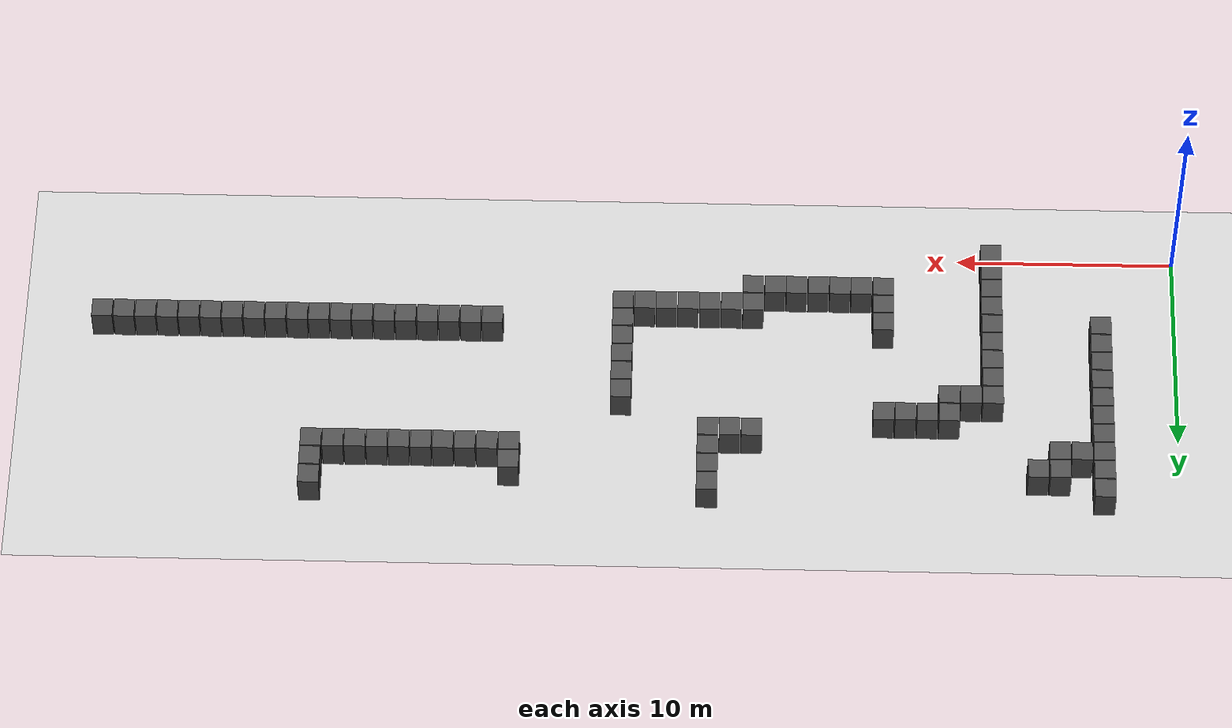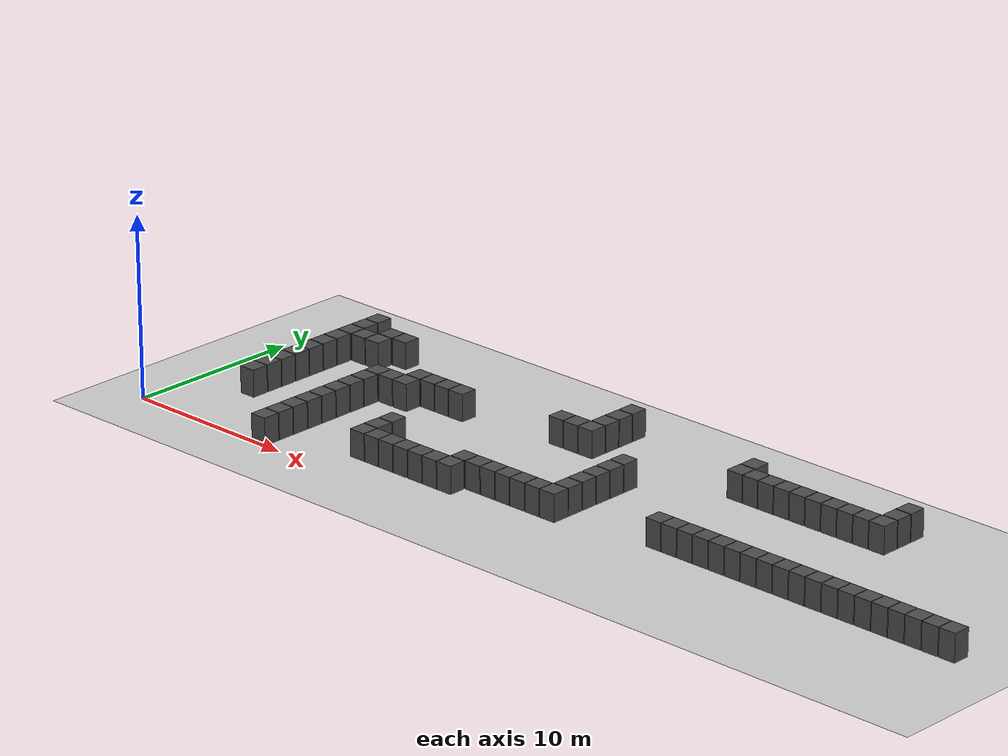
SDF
<sdf version="1.6">
 <world name="maze_world">
  <model name="ground_plane">
   <static>true</static>
   <pose>25.0 25.0 0 0 0 0</pose>
   <link name="link">
    <collision name="collision">
     <geometry><plane><normal>0 0 1</normal><size>50.0 50.0</size></plane></geometry>
    </collision>
    <visual name="visual">
     <geometry><plane><normal>0 0 1</normal><size>50.0 50.0</size></plane></geometry>
     <material><ambient>0.8 0.8 0.8 1</ambient><diffuse>0.8 0.8 0.8 1</diffuse></material>
    </visual>
   </link>
  </model>
  <model name="wall_176">
   <static>true</static>
   <pose>3.500 13.500 0.750 0 0 0</pose>
   <link name="link">
    <collision name="collision"><geometry><box><size>0.950 0.950 1.500</size></box></geometry></collision>
    <visual name="visual">
     <geometry><box><size>0.950 0.950 1.500</size></box></geometry>
     <material><ambient>0.2 0.2 0.2 1</ambient><diffuse>0.3 0.3 0.3 1</diffuse></material>
    </visual>
   </link>
  </model>
  <model name="wall_177">
   <static>true</static>
   <pose>21.500 13.500 0.750 0 0 0</pose>
   <link name="link">
    <collision name="collision"><geometry><box><size>0.950 0.950 1.500</size></box></geometry></collision>
    <visual name="visual">
     <geometry><box><size>0.950 0.950 1.500</size></box></geometry>
     <material><ambient>0.2 0.2 0.2 1</ambient><diffuse>0.3 0.3 0.3 1</diffuse></material>
    </visual>
   </link>
  </model>
  <model name="wall_178">
   <static>true</static>
   <pose>39.500 13.500 0.750 0 0 0</pose>
   <link name="link">
    <collision name="collision"><geometry><box><size>0.950 0.950 1.500</size></box></geometry></collision>
    <visual name="visual">
     <geometry><box><size>0.950 0.950 1.500</size></box></geometry>
     <material><ambient>0.2 0.2 0.2 1</ambient><diffuse>0.3 0.3 0.3 1</diffuse></material>
    </visual>
   </link>
  </model>
  <model name="wall_179">
   <static>true</static>
   <pose>3.500 12.500 0.750 0 0 0</pose>
   <link name="link">
    <collision name="collision"><geometry><box><size>0.950 0.950 1.500</size></box></geometry></collision>
    <visual name="visual">
     <geometry><box><size>0.950 0.950 1.500</size></box></geometry>
     <material><ambient>0.2 0.2 0.2 1</ambient><diffuse>0.3 0.3 0.3 1</diffuse></material>
    </visual>
   </link>
  </model>
  <model name="wall_180">
   <static>true</static>
   <pose>5.500 12.500 0.750 0 0 0</pose>
   <link name="link">
    <collision name="collision"><geometry><box><size>0.950 0.950 1.500</size></box></geometry></collision>
    <visual name="visual">
     <geometry><box><size>0.950 0.950 1.500</size></box></geometry>
     <material><ambient>0.2 0.2 0.2 1</ambient><diffuse>0.3 0.3 0.3 1</diffuse></material>
    </visual>
   </link>
  </model>
  <model name="wall_181">
   <static>true</static>
   <pose>6.500 12.500 0.750 0 0 0</pose>
   <link name="link">
    <collision name="collision"><geometry><box><size>0.950 0.950 1.500</size></box></geometry></collision>
    <visual name="visual">
     <geometry><box><size>0.950 0.950 1.500</size></box></geometry>
     <material><ambient>0.2 0.2 0.2 1</ambient><diffuse>0.3 0.3 0.3 1</diffuse></material>
    </visual>
   </link>
  </model>
  <model name="wall_182">
   <static>true</static>
   <pose>21.500 12.500 0.750 0 0 0</pose>
   <link name="link">
    <collision name="collision"><geometry><box><size>0.950 0.950 1.500</size></box></geometry></collision>
    <visual name="visual">
     <geometry><box><size>0.950 0.950 1.500</size></box></geometry>
     <material><ambient>0.2 0.2 0.2 1</ambient><diffuse>0.3 0.3 0.3 1</diffuse></material>
    </visual>
   </link>
  </model>
  <model name="wall_183">
   <static>true</static>
   <pose>30.500 12.500 0.750 0 0 0</pose>
   <link name="link">
    <collision name="collision"><geometry><box><size>0.950 0.950 1.500</size></box></geometry></collision>
    <visual name="visual">
     <geometry><box><size>0.950 0.950 1.500</size></box></geometry>
     <material><ambient>0.2 0.2 0.2 1</ambient><diffuse>0.3 0.3 0.3 1</diffuse></material>
    </visual>
   </link>
  </model>
  <model name="wall_184">
   <static>true</static>
   <pose>39.500 12.500 0.750 0 0 0</pose>
   <link name="link">
    <collision name="collision"><geometry><box><size>0.950 0.950 1.500</size></box></geometry></collision>
    <visual name="visual">
     <geometry><box><size>0.950 0.950 1.500</size></box></geometry>
     <material><ambient>0.2 0.2 0.2 1</ambient><diffuse>0.3 0.3 0.3 1</diffuse></material>
    </visual>
   </link>
  </model>
  <model name="wall_185">
   <static>true</static>
   <pose>3.500 11.500 0.750 0 0 0</pose>
   <link name="link">
    <collision name="collision"><geometry><box><size>0.950 0.950 1.500</size></box></geometry></collision>
    <visual name="visual">
     <geometry><box><size>0.950 0.950 1.500</size></box></geometry>
     <material><ambient>0.2 0.2 0.2 1</ambient><diffuse>0.3 0.3 0.3 1</diffuse></material>
    </visual>
   </link>
  </model>
  <model name="wall_186">
   <static>true</static>
   <pose>4.500 11.500 0.750 0 0 0</pose>
   <link name="link">
    <collision name="collision"><geometry><box><size>0.950 0.950 1.500</size></box></geometry></collision>
    <visual name="visual">
     <geometry><box><size>0.950 0.950 1.500</size></box></geometry>
     <material><ambient>0.2 0.2 0.2 1</ambient><diffuse>0.3 0.3 0.3 1</diffuse></material>
    </visual>
   </link>
  </model>
  <model name="wall_187">
   <static>true</static>
   <pose>5.500 11.500 0.750 0 0 0</pose>
   <link name="link">
    <collision name="collision"><geometry><box><size>0.950 0.950 1.500</size></box></geometry></collision>
    <visual name="visual">
     <geometry><box><size>0.950 0.950 1.500</size></box></geometry>
     <material><ambient>0.2 0.2 0.2 1</ambient><diffuse>0.3 0.3 0.3 1</diffuse></material>
    </visual>
   </link>
  </model>
  <model name="wall_188">
   <static>true</static>
   <pose>21.500 11.500 0.750 0 0 0</pose>
   <link name="link">
    <collision name="collision"><geometry><box><size>0.950 0.950 1.500</size></box></geometry></collision>
    <visual name="visual">
     <geometry><box><size>0.950 0.950 1.500</size></box></geometry>
     <material><ambient>0.2 0.2 0.2 1</ambient><diffuse>0.3 0.3 0.3 1</diffuse></material>
    </visual>
   </link>
  </model>
  <model name="wall_189">
   <static>true</static>
   <pose>30.500 11.500 0.750 0 0 0</pose>
   <link name="link">
    <collision name="collision"><geometry><box><size>0.950 0.950 1.500</size></box></geometry></collision>
    <visual name="visual">
     <geometry><box><size>0.950 0.950 1.500</size></box></geometry>
     <material><ambient>0.2 0.2 0.2 1</ambient><diffuse>0.3 0.3 0.3 1</diffuse></material>
    </visual>
   </link>
  </model>
  <model name="wall_190">
   <static>true</static>
   <pose>31.500 11.500 0.750 0 0 0</pose>
   <link name="link">
    <collision name="collision"><geometry><box><size>0.950 0.950 1.500</size></box></geometry></collision>
    <visual name="visual">
     <geometry><box><size>0.950 0.950 1.500</size></box></geometry>
     <material><ambient>0.2 0.2 0.2 1</ambient><diffuse>0.3 0.3 0.3 1</diffuse></material>
    </visual>
   </link>
  </model>
  <model name="wall_191">
   <static>true</static>
   <pose>32.500 11.500 0.750 0 0 0</pose>
   <link name="link">
    <collision name="collision"><geometry><box><size>0.950 0.950 1.500</size></box></geometry></collision>
    <visual name="visual">
     <geometry><box><size>0.950 0.950 1.500</size></box></geometry>
     <material><ambient>0.2 0.2 0.2 1</ambient><diffuse>0.3 0.3 0.3 1</diffuse></material>
    </visual>
   </link>
  </model>
  <model name="wall_192">
   <static>true</static>
   <pose>33.500 11.500 0.750 0 0 0</pose>
   <link name="link">
    <collision name="collision"><geometry><box><size>0.950 0.950 1.500</size></box></geometry></collision>
    <visual name="visual">
     <geometry><box><size>0.950 0.950 1.500</size></box></geometry>
     <material><ambient>0.2 0.2 0.2 1</ambient><diffuse>0.3 0.3 0.3 1</diffuse></material>
    </visual>
   </link>
  </model>
  <model name="wall_193">
   <static>true</static>
   <pose>34.500 11.500 0.750 0 0 0</pose>
   <link name="link">
    <collision name="collision"><geometry><box><size>0.950 0.950 1.500</size></box></geometry></collision>
    <visual name="visual">
     <geometry><box><size>0.950 0.950 1.500</size></box></geometry>
     <material><ambient>0.2 0.2 0.2 1</ambient><diffuse>0.3 0.3 0.3 1</diffuse></material>
    </visual>
   </link>
  </model>
  <model name="wall_194">
   <static>true</static>
   <pose>35.500 11.500 0.750 0 0 0</pose>
   <link name="link">
    <collision name="collision"><geometry><box><size>0.950 0.950 1.500</size></box></geometry></collision>
    <visual name="visual">
     <geometry><box><size>0.950 0.950 1.500</size></box></geometry>
     <material><ambient>0.2 0.2 0.2 1</ambient><diffuse>0.3 0.3 0.3 1</diffuse></material>
    </visual>
   </link>
  </model>
  <model name="wall_195">
   <static>true</static>
   <pose>36.500 11.500 0.750 0 0 0</pose>
   <link name="link">
    <collision name="collision"><geometry><box><size>0.950 0.950 1.500</size></box></geometry></collision>
    <visual name="visual">
     <geometry><box><size>0.950 0.950 1.500</size></box></geometry>
     <material><ambient>0.2 0.2 0.2 1</ambient><diffuse>0.3 0.3 0.3 1</diffuse></material>
    </visual>
   </link>
  </model>
  <model name="wall_196">
   <static>true</static>
   <pose>37.500 11.500 0.750 0 0 0</pose>
   <link name="link">
    <collision name="collision"><geometry><box><size>0.950 0.950 1.500</size></box></geometry></collision>
    <visual name="visual">
     <geometry><box><size>0.950 0.950 1.500</size></box></geometry>
     <material><ambient>0.2 0.2 0.2 1</ambient><diffuse>0.3 0.3 0.3 1</diffuse></material>
    </visual>
   </link>
  </model>
  <model name="wall_197">
   <static>true</static>
   <pose>38.500 11.500 0.750 0 0 0</pose>
   <link name="link">
    <collision name="collision"><geometry><box><size>0.950 0.950 1.500</size></box></geometry></collision>
    <visual name="visual">
     <geometry><box><size>0.950 0.950 1.500</size></box></geometry>
     <material><ambient>0.2 0.2 0.2 1</ambient><diffuse>0.3 0.3 0.3 1</diffuse></material>
    </visual>
   </link>
  </model>
  <model name="wall_198">
   <static>true</static>
   <pose>39.500 11.500 0.750 0 0 0</pose>
   <link name="link">
    <collision name="collision"><geometry><box><size>0.950 0.950 1.500</size></box></geometry></collision>
    <visual name="visual">
     <geometry><box><size>0.950 0.950 1.500</size></box></geometry>
     <material><ambient>0.2 0.2 0.2 1</ambient><diffuse>0.3 0.3 0.3 1</diffuse></material>
    </visual>
   </link>
  </model>
  <model name="wall_199">
   <static>true</static>
   <pose>3.500 10.500 0.750 0 0 0</pose>
   <link name="link">
    <collision name="collision"><geometry><box><size>0.950 0.950 1.500</size></box></geometry></collision>
    <visual name="visual">
     <geometry><box><size>0.950 0.950 1.500</size></box></geometry>
     <material><ambient>0.2 0.2 0.2 1</ambient><diffuse>0.3 0.3 0.3 1</diffuse></material>
    </visual>
   </link>
  </model>
  <model name="wall_200">
   <static>true</static>
   <pose>19.500 10.500 0.750 0 0 0</pose>
   <link name="link">
    <collision name="collision"><geometry><box><size>0.950 0.950 1.500</size></box></geometry></collision>
    <visual name="visual">
     <geometry><box><size>0.950 0.950 1.500</size></box></geometry>
     <material><ambient>0.2 0.2 0.2 1</ambient><diffuse>0.3 0.3 0.3 1</diffuse></material>
    </visual>
   </link>
  </model>
  <model name="wall_201">
   <static>true</static>
   <pose>20.500 10.500 0.750 0 0 0</pose>
   <link name="link">
    <collision name="collision"><geometry><box><size>0.950 0.950 1.500</size></box></geometry></collision>
    <visual name="visual">
     <geometry><box><size>0.950 0.950 1.500</size></box></geometry>
     <material><ambient>0.2 0.2 0.2 1</ambient><diffuse>0.3 0.3 0.3 1</diffuse></material>
    </visual>
   </link>
  </model>
  <model name="wall_202">
   <static>true</static>
   <pose>21.500 10.500 0.750 0 0 0</pose>
   <link name="link">
    <collision name="collision"><geometry><box><size>0.950 0.950 1.500</size></box></geometry></collision>
    <visual name="visual">
     <geometry><box><size>0.950 0.950 1.500</size></box></geometry>
     <material><ambient>0.2 0.2 0.2 1</ambient><diffuse>0.3 0.3 0.3 1</diffuse></material>
    </visual>
   </link>
  </model>
  <model name="wall_203">
   <static>true</static>
   <pose>3.500 9.500 0.750 0 0 0</pose>
   <link name="link">
    <collision name="collision"><geometry><box><size>0.950 0.950 1.500</size></box></geometry></collision>
    <visual name="visual">
     <geometry><box><size>0.950 0.950 1.500</size></box></geometry>
     <material><ambient>0.2 0.2 0.2 1</ambient><diffuse>0.3 0.3 0.3 1</diffuse></material>
    </visual>
   </link>
  </model>
  <model name="wall_204">
   <static>true</static>
   <pose>10.500 9.500 0.750 0 0 0</pose>
   <link name="link">
    <collision name="collision"><geometry><box><size>0.950 0.950 1.500</size></box></geometry></collision>
    <visual name="visual">
     <geometry><box><size>0.950 0.950 1.500</size></box></geometry>
     <material><ambient>0.2 0.2 0.2 1</ambient><diffuse>0.3 0.3 0.3 1</diffuse></material>
    </visual>
   </link>
  </model>
  <model name="wall_205">
   <static>true</static>
   <pose>11.500 9.500 0.750 0 0 0</pose>
   <link name="link">
    <collision name="collision"><geometry><box><size>0.950 0.950 1.500</size></box></geometry></collision>
    <visual name="visual">
     <geometry><box><size>0.950 0.950 1.500</size></box></geometry>
     <material><ambient>0.2 0.2 0.2 1</ambient><diffuse>0.3 0.3 0.3 1</diffuse></material>
    </visual>
   </link>
  </model>
  <model name="wall_206">
   <static>true</static>
   <pose>12.500 9.500 0.750 0 0 0</pose>
   <link name="link">
    <collision name="collision"><geometry><box><size>0.950 0.950 1.500</size></box></geometry></collision>
    <visual name="visual">
     <geometry><box><size>0.950 0.950 1.500</size></box></geometry>
     <material><ambient>0.2 0.2 0.2 1</ambient><diffuse>0.3 0.3 0.3 1</diffuse></material>
    </visual>
   </link>
  </model>
  <model name="wall_207">
   <static>true</static>
   <pose>13.500 9.500 0.750 0 0 0</pose>
   <link name="link">
    <collision name="collision"><geometry><box><size>0.950 0.950 1.500</size></box></geometry></collision>
    <visual name="visual">
     <geometry><box><size>0.950 0.950 1.500</size></box></geometry>
     <material><ambient>0.2 0.2 0.2 1</ambient><diffuse>0.3 0.3 0.3 1</diffuse></material>
    </visual>
   </link>
  </model>
  <model name="wall_208">
   <static>true</static>
   <pose>3.500 8.500 0.750 0 0 0</pose>
   <link name="link">
    <collision name="collision"><geometry><box><size>0.950 0.950 1.500</size></box></geometry></collision>
    <visual name="visual">
     <geometry><box><size>0.950 0.950 1.500</size></box></geometry>
     <material><ambient>0.2 0.2 0.2 1</ambient><diffuse>0.3 0.3 0.3 1</diffuse></material>
    </visual>
   </link>
  </model>
  <model name="wall_209">
   <static>true</static>
   <pose>8.500 8.500 0.750 0 0 0</pose>
   <link name="link">
    <collision name="collision"><geometry><box><size>0.950 0.950 1.500</size></box></geometry></collision>
    <visual name="visual">
     <geometry><box><size>0.950 0.950 1.500</size></box></geometry>
     <material><ambient>0.2 0.2 0.2 1</ambient><diffuse>0.3 0.3 0.3 1</diffuse></material>
    </visual>
   </link>
  </model>
  <model name="wall_210">
   <static>true</static>
   <pose>9.500 8.500 0.750 0 0 0</pose>
   <link name="link">
    <collision name="collision"><geometry><box><size>0.950 0.950 1.500</size></box></geometry></collision>
    <visual name="visual">
     <geometry><box><size>0.950 0.950 1.500</size></box></geometry>
     <material><ambient>0.2 0.2 0.2 1</ambient><diffuse>0.3 0.3 0.3 1</diffuse></material>
    </visual>
   </link>
  </model>
  <model name="wall_211">
   <static>true</static>
   <pose>10.500 8.500 0.750 0 0 0</pose>
   <link name="link">
    <collision name="collision"><geometry><box><size>0.950 0.950 1.500</size></box></geometry></collision>
    <visual name="visual">
     <geometry><box><size>0.950 0.950 1.500</size></box></geometry>
     <material><ambient>0.2 0.2 0.2 1</ambient><diffuse>0.3 0.3 0.3 1</diffuse></material>
    </visual>
   </link>
  </model>
  <model name="wall_212">
   <static>true</static>
   <pose>25.500 8.500 0.750 0 0 0</pose>
   <link name="link">
    <collision name="collision"><geometry><box><size>0.950 0.950 1.500</size></box></geometry></collision>
    <visual name="visual">
     <geometry><box><size>0.950 0.950 1.500</size></box></geometry>
     <material><ambient>0.2 0.2 0.2 1</ambient><diffuse>0.3 0.3 0.3 1</diffuse></material>
    </visual>
   </link>
  </model>
  <model name="wall_213">
   <static>true</static>
   <pose>3.500 7.500 0.750 0 0 0</pose>
   <link name="link">
    <collision name="collision"><geometry><box><size>0.950 0.950 1.500</size></box></geometry></collision>
    <visual name="visual">
     <geometry><box><size>0.950 0.950 1.500</size></box></geometry>
     <material><ambient>0.2 0.2 0.2 1</ambient><diffuse>0.3 0.3 0.3 1</diffuse></material>
    </visual>
   </link>
  </model>
  <model name="wall_214">
   <static>true</static>
   <pose>8.500 7.500 0.750 0 0 0</pose>
   <link name="link">
    <collision name="collision"><geometry><box><size>0.950 0.950 1.500</size></box></geometry></collision>
    <visual name="visual">
     <geometry><box><size>0.950 0.950 1.500</size></box></geometry>
     <material><ambient>0.2 0.2 0.2 1</ambient><diffuse>0.3 0.3 0.3 1</diffuse></material>
    </visual>
   </link>
  </model>
  <model name="wall_215">
   <static>true</static>
   <pose>25.500 7.500 0.750 0 0 0</pose>
   <link name="link">
    <collision name="collision"><geometry><box><size>0.950 0.950 1.500</size></box></geometry></collision>
    <visual name="visual">
     <geometry><box><size>0.950 0.950 1.500</size></box></geometry>
     <material><ambient>0.2 0.2 0.2 1</ambient><diffuse>0.3 0.3 0.3 1</diffuse></material>
    </visual>
   </link>
  </model>
  <model name="wall_216">
   <static>true</static>
   <pose>3.500 6.500 0.750 0 0 0</pose>
   <link name="link">
    <collision name="collision"><geometry><box><size>0.950 0.950 1.500</size></box></geometry></collision>
    <visual name="visual">
     <geometry><box><size>0.950 0.950 1.500</size></box></geometry>
     <material><ambient>0.2 0.2 0.2 1</ambient><diffuse>0.3 0.3 0.3 1</diffuse></material>
    </visual>
   </link>
  </model>
  <model name="wall_217">
   <static>true</static>
   <pose>8.500 6.500 0.750 0 0 0</pose>
   <link name="link">
    <collision name="collision"><geometry><box><size>0.950 0.950 1.500</size></box></geometry></collision>
    <visual name="visual">
     <geometry><box><size>0.950 0.950 1.500</size></box></geometry>
     <material><ambient>0.2 0.2 0.2 1</ambient><diffuse>0.3 0.3 0.3 1</diffuse></material>
    </visual>
   </link>
  </model>
  <model name="wall_218">
   <static>true</static>
   <pose>25.500 6.500 0.750 0 0 0</pose>
   <link name="link">
    <collision name="collision"><geometry><box><size>0.950 0.950 1.500</size></box></geometry></collision>
    <visual name="visual">
     <geometry><box><size>0.950 0.950 1.500</size></box></geometry>
     <material><ambient>0.2 0.2 0.2 1</ambient><diffuse>0.3 0.3 0.3 1</diffuse></material>
    </visual>
   </link>
  </model>
  <model name="wall_219">
   <static>true</static>
   <pose>3.500 5.500 0.750 0 0 0</pose>
   <link name="link">
    <collision name="collision"><geometry><box><size>0.950 0.950 1.500</size></box></geometry></collision>
    <visual name="visual">
     <geometry><box><size>0.950 0.950 1.500</size></box></geometry>
     <material><ambient>0.2 0.2 0.2 1</ambient><diffuse>0.3 0.3 0.3 1</diffuse></material>
    </visual>
   </link>
  </model>
  <model name="wall_220">
   <static>true</static>
   <pose>8.500 5.500 0.750 0 0 0</pose>
   <link name="link">
    <collision name="collision"><geometry><box><size>0.950 0.950 1.500</size></box></geometry></collision>
    <visual name="visual">
     <geometry><box><size>0.950 0.950 1.500</size></box></geometry>
     <material><ambient>0.2 0.2 0.2 1</ambient><diffuse>0.3 0.3 0.3 1</diffuse></material>
    </visual>
   </link>
  </model>
  <model name="wall_221">
   <static>true</static>
   <pose>25.500 5.500 0.750 0 0 0</pose>
   <link name="link">
    <collision name="collision"><geometry><box><size>0.950 0.950 1.500</size></box></geometry></collision>
    <visual name="visual">
     <geometry><box><size>0.950 0.950 1.500</size></box></geometry>
     <material><ambient>0.2 0.2 0.2 1</ambient><diffuse>0.3 0.3 0.3 1</diffuse></material>
    </visual>
   </link>
  </model>
  <model name="wall_222">
   <static>true</static>
   <pose>3.500 4.500 0.750 0 0 0</pose>
   <link name="link">
    <collision name="collision"><geometry><box><size>0.950 0.950 1.500</size></box></geometry></collision>
    <visual name="visual">
     <geometry><box><size>0.950 0.950 1.500</size></box></geometry>
     <material><ambient>0.2 0.2 0.2 1</ambient><diffuse>0.3 0.3 0.3 1</diffuse></material>
    </visual>
   </link>
  </model>
  <model name="wall_223">
   <static>true</static>
   <pose>8.500 4.500 0.750 0 0 0</pose>
   <link name="link">
    <collision name="collision"><geometry><box><size>0.950 0.950 1.500</size></box></geometry></collision>
    <visual name="visual">
     <geometry><box><size>0.950 0.950 1.500</size></box></geometry>
     <material><ambient>0.2 0.2 0.2 1</ambient><diffuse>0.3 0.3 0.3 1</diffuse></material>
    </visual>
   </link>
  </model>
  <model name="wall_224">
   <static>true</static>
   <pose>13.500 4.500 0.750 0 0 0</pose>
   <link name="link">
    <collision name="collision"><geometry><box><size>0.950 0.950 1.500</size></box></geometry></collision>
    <visual name="visual">
     <geometry><box><size>0.950 0.950 1.500</size></box></geometry>
     <material><ambient>0.2 0.2 0.2 1</ambient><diffuse>0.3 0.3 0.3 1</diffuse></material>
    </visual>
   </link>
  </model>
  <model name="wall_225">
   <static>true</static>
   <pose>25.500 4.500 0.750 0 0 0</pose>
   <link name="link">
    <collision name="collision"><geometry><box><size>0.950 0.950 1.500</size></box></geometry></collision>
    <visual name="visual">
     <geometry><box><size>0.950 0.950 1.500</size></box></geometry>
     <material><ambient>0.2 0.2 0.2 1</ambient><diffuse>0.3 0.3 0.3 1</diffuse></material>
    </visual>
   </link>
  </model>
  <model name="wall_226">
   <static>true</static>
   <pose>31.500 4.500 0.750 0 0 0</pose>
   <link name="link">
    <collision name="collision"><geometry><box><size>0.950 0.950 1.500</size></box></geometry></collision>
    <visual name="visual">
     <geometry><box><size>0.950 0.950 1.500</size></box></geometry>
     <material><ambient>0.2 0.2 0.2 1</ambient><diffuse>0.3 0.3 0.3 1</diffuse></material>
    </visual>
   </link>
  </model>
  <model name="wall_227">
   <static>true</static>
   <pose>32.500 4.500 0.750 0 0 0</pose>
   <link name="link">
    <collision name="collision"><geometry><box><size>0.950 0.950 1.500</size></box></geometry></collision>
    <visual name="visual">
     <geometry><box><size>0.950 0.950 1.500</size></box></geometry>
     <material><ambient>0.2 0.2 0.2 1</ambient><diffuse>0.3 0.3 0.3 1</diffuse></material>
    </visual>
   </link>
  </model>
  <model name="wall_228">
   <static>true</static>
   <pose>33.500 4.500 0.750 0 0 0</pose>
   <link name="link">
    <collision name="collision"><geometry><box><size>0.950 0.950 1.500</size></box></geometry></collision>
    <visual name="visual">
     <geometry><box><size>0.950 0.950 1.500</size></box></geometry>
     <material><ambient>0.2 0.2 0.2 1</ambient><diffuse>0.3 0.3 0.3 1</diffuse></material>
    </visual>
   </link>
  </model>
  <model name="wall_229">
   <static>true</static>
   <pose>34.500 4.500 0.750 0 0 0</pose>
   <link name="link">
    <collision name="collision"><geometry><box><size>0.950 0.950 1.500</size></box></geometry></collision>
    <visual name="visual">
     <geometry><box><size>0.950 0.950 1.500</size></box></geometry>
     <material><ambient>0.2 0.2 0.2 1</ambient><diffuse>0.3 0.3 0.3 1</diffuse></material>
    </visual>
   </link>
  </model>
  <model name="wall_230">
   <static>true</static>
   <pose>35.500 4.500 0.750 0 0 0</pose>
   <link name="link">
    <collision name="collision"><geometry><box><size>0.950 0.950 1.500</size></box></geometry></collision>
    <visual name="visual">
     <geometry><box><size>0.950 0.950 1.500</size></box></geometry>
     <material><ambient>0.2 0.2 0.2 1</ambient><diffuse>0.3 0.3 0.3 1</diffuse></material>
    </visual>
   </link>
  </model>
  <model name="wall_231">
   <static>true</static>
   <pose>36.500 4.500 0.750 0 0 0</pose>
   <link name="link">
    <collision name="collision"><geometry><box><size>0.950 0.950 1.500</size></box></geometry></collision>
    <visual name="visual">
     <geometry><box><size>0.950 0.950 1.500</size></box></geometry>
     <material><ambient>0.2 0.2 0.2 1</ambient><diffuse>0.3 0.3 0.3 1</diffuse></material>
    </visual>
   </link>
  </model>
  <model name="wall_232">
   <static>true</static>
   <pose>37.500 4.500 0.750 0 0 0</pose>
   <link name="link">
    <collision name="collision"><geometry><box><size>0.950 0.950 1.500</size></box></geometry></collision>
    <visual name="visual">
     <geometry><box><size>0.950 0.950 1.500</size></box></geometry>
     <material><ambient>0.2 0.2 0.2 1</ambient><diffuse>0.3 0.3 0.3 1</diffuse></material>
    </visual>
   </link>
  </model>
  <model name="wall_233">
   <static>true</static>
   <pose>38.500 4.500 0.750 0 0 0</pose>
   <link name="link">
    <collision name="collision"><geometry><box><size>0.950 0.950 1.500</size></box></geometry></collision>
    <visual name="visual">
     <geometry><box><size>0.950 0.950 1.500</size></box></geometry>
     <material><ambient>0.2 0.2 0.2 1</ambient><diffuse>0.3 0.3 0.3 1</diffuse></material>
    </visual>
   </link>
  </model>
  <model name="wall_234">
   <static>true</static>
   <pose>39.500 4.500 0.750 0 0 0</pose>
   <link name="link">
    <collision name="collision"><geometry><box><size>0.950 0.950 1.500</size></box></geometry></collision>
    <visual name="visual">
     <geometry><box><size>0.950 0.950 1.500</size></box></geometry>
     <material><ambient>0.2 0.2 0.2 1</ambient><diffuse>0.3 0.3 0.3 1</diffuse></material>
    </visual>
   </link>
  </model>
  <model name="wall_235">
   <static>true</static>
   <pose>40.500 4.500 0.750 0 0 0</pose>
   <link name="link">
    <collision name="collision"><geometry><box><size>0.950 0.950 1.500</size></box></geometry></collision>
    <visual name="visual">
     <geometry><box><size>0.950 0.950 1.500</size></box></geometry>
     <material><ambient>0.2 0.2 0.2 1</ambient><diffuse>0.3 0.3 0.3 1</diffuse></material>
    </visual>
   </link>
  </model>
  <model name="wall_236">
   <static>true</static>
   <pose>41.500 4.500 0.750 0 0 0</pose>
   <link name="link">
    <collision name="collision"><geometry><box><size>0.950 0.950 1.500</size></box></geometry></collision>
    <visual name="visual">
     <geometry><box><size>0.950 0.950 1.500</size></box></geometry>
     <material><ambient>0.2 0.2 0.2 1</ambient><diffuse>0.3 0.3 0.3 1</diffuse></material>
    </visual>
   </link>
  </model>
  <model name="wall_237">
   <static>true</static>
   <pose>42.500 4.500 0.750 0 0 0</pose>
   <link name="link">
    <collision name="collision"><geometry><box><size>0.950 0.950 1.500</size></box></geometry></collision>
    <visual name="visual">
     <geometry><box><size>0.950 0.950 1.500</size></box></geometry>
     <material><ambient>0.2 0.2 0.2 1</ambient><diffuse>0.3 0.3 0.3 1</diffuse></material>
    </visual>
   </link>
  </model>
  <model name="wall_238">
   <static>true</static>
   <pose>43.500 4.500 0.750 0 0 0</pose>
   <link name="link">
    <collision name="collision"><geometry><box><size>0.950 0.950 1.500</size></box></geometry></collision>
    <visual name="visual">
     <geometry><box><size>0.950 0.950 1.500</size></box></geometry>
     <material><ambient>0.2 0.2 0.2 1</ambient><diffuse>0.3 0.3 0.3 1</diffuse></material>
    </visual>
   </link>
  </model>
  <model name="wall_239">
   <static>true</static>
   <pose>44.500 4.500 0.750 0 0 0</pose>
   <link name="link">
    <collision name="collision"><geometry><box><size>0.950 0.950 1.500</size></box></geometry></collision>
    <visual name="visual">
     <geometry><box><size>0.950 0.950 1.500</size></box></geometry>
     <material><ambient>0.2 0.2 0.2 1</ambient><diffuse>0.3 0.3 0.3 1</diffuse></material>
    </visual>
   </link>
  </model>
  <model name="wall_240">
   <static>true</static>
   <pose>45.500 4.500 0.750 0 0 0</pose>
   <link name="link">
    <collision name="collision"><geometry><box><size>0.950 0.950 1.500</size></box></geometry></collision>
    <visual name="visual">
     <geometry><box><size>0.950 0.950 1.500</size></box></geometry>
     <material><ambient>0.2 0.2 0.2 1</ambient><diffuse>0.3 0.3 0.3 1</diffuse></material>
    </visual>
   </link>
  </model>
  <model name="wall_241">
   <static>true</static>
   <pose>46.500 4.500 0.750 0 0 0</pose>
   <link name="link">
    <collision name="collision"><geometry><box><size>0.950 0.950 1.500</size></box></geometry></collision>
    <visual name="visual">
     <geometry><box><size>0.950 0.950 1.500</size></box></geometry>
     <material><ambient>0.2 0.2 0.2 1</ambient><diffuse>0.3 0.3 0.3 1</diffuse></material>
    </visual>
   </link>
  </model>
  <model name="wall_242">
   <static>true</static>
   <pose>47.500 4.500 0.750 0 0 0</pose>
   <link name="link">
    <collision name="collision"><geometry><box><size>0.950 0.950 1.500</size></box></geometry></collision>
    <visual name="visual">
     <geometry><box><size>0.950 0.950 1.500</size></box></geometry>
     <material><ambient>0.2 0.2 0.2 1</ambient><diffuse>0.3 0.3 0.3 1</diffuse></material>
    </visual>
   </link>
  </model>
  <model name="wall_243">
   <static>true</static>
   <pose>48.500 4.500 0.750 0 0 0</pose>
   <link name="link">
    <collision name="collision"><geometry><box><size>0.950 0.950 1.500</size></box></geometry></collision>
    <visual name="visual">
     <geometry><box><size>0.950 0.950 1.500</size></box></geometry>
     <material><ambient>0.2 0.2 0.2 1</ambient><diffuse>0.3 0.3 0.3 1</diffuse></material>
    </visual>
   </link>
  </model>
  <model name="wall_244">
   <static>true</static>
   <pose>49.500 4.500 0.750 0 0 0</pose>
   <link name="link">
    <collision name="collision"><geometry><box><size>0.950 0.950 1.500</size></box></geometry></collision>
    <visual name="visual">
     <geometry><box><size>0.950 0.950 1.500</size></box></geometry>
     <material><ambient>0.2 0.2 0.2 1</ambient><diffuse>0.3 0.3 0.3 1</diffuse></material>
    </visual>
   </link>
  </model>
  <model name="wall_245">
   <static>true</static>
   <pose>8.500 3.500 0.750 0 0 0</pose>
   <link name="link">
    <collision name="collision"><geometry><box><size>0.950 0.950 1.500</size></box></geometry></collision>
    <visual name="visual">
     <geometry><box><size>0.950 0.950 1.500</size></box></geometry>
     <material><ambient>0.2 0.2 0.2 1</ambient><diffuse>0.3 0.3 0.3 1</diffuse></material>
    </visual>
   </link>
  </model>
  <model name="wall_246">
   <static>true</static>
   <pose>13.500 3.500 0.750 0 0 0</pose>
   <link name="link">
    <collision name="collision"><geometry><box><size>0.950 0.950 1.500</size></box></geometry></collision>
    <visual name="visual">
     <geometry><box><size>0.950 0.950 1.500</size></box></geometry>
     <material><ambient>0.2 0.2 0.2 1</ambient><diffuse>0.3 0.3 0.3 1</diffuse></material>
    </visual>
   </link>
  </model>
  <model name="wall_247">
   <static>true</static>
   <pose>19.500 3.500 0.750 0 0 0</pose>
   <link name="link">
    <collision name="collision"><geometry><box><size>0.950 0.950 1.500</size></box></geometry></collision>
    <visual name="visual">
     <geometry><box><size>0.950 0.950 1.500</size></box></geometry>
     <material><ambient>0.2 0.2 0.2 1</ambient><diffuse>0.3 0.3 0.3 1</diffuse></material>
    </visual>
   </link>
  </model>
  <model name="wall_248">
   <static>true</static>
   <pose>20.500 3.500 0.750 0 0 0</pose>
   <link name="link">
    <collision name="collision"><geometry><box><size>0.950 0.950 1.500</size></box></geometry></collision>
    <visual name="visual">
     <geometry><box><size>0.950 0.950 1.500</size></box></geometry>
     <material><ambient>0.2 0.2 0.2 1</ambient><diffuse>0.3 0.3 0.3 1</diffuse></material>
    </visual>
   </link>
  </model>
  <model name="wall_249">
   <static>true</static>
   <pose>21.500 3.500 0.750 0 0 0</pose>
   <link name="link">
    <collision name="collision"><geometry><box><size>0.950 0.950 1.500</size></box></geometry></collision>
    <visual name="visual">
     <geometry><box><size>0.950 0.950 1.500</size></box></geometry>
     <material><ambient>0.2 0.2 0.2 1</ambient><diffuse>0.3 0.3 0.3 1</diffuse></material>
    </visual>
   </link>
  </model>
  <model name="wall_250">
   <static>true</static>
   <pose>22.500 3.500 0.750 0 0 0</pose>
   <link name="link">
    <collision name="collision"><geometry><box><size>0.950 0.950 1.500</size></box></geometry></collision>
    <visual name="visual">
     <geometry><box><size>0.950 0.950 1.500</size></box></geometry>
     <material><ambient>0.2 0.2 0.2 1</ambient><diffuse>0.3 0.3 0.3 1</diffuse></material>
    </visual>
   </link>
  </model>
  <model name="wall_251">
   <static>true</static>
   <pose>23.500 3.500 0.750 0 0 0</pose>
   <link name="link">
    <collision name="collision"><geometry><box><size>0.950 0.950 1.500</size></box></geometry></collision>
    <visual name="visual">
     <geometry><box><size>0.950 0.950 1.500</size></box></geometry>
     <material><ambient>0.2 0.2 0.2 1</ambient><diffuse>0.3 0.3 0.3 1</diffuse></material>
    </visual>
   </link>
  </model>
  <model name="wall_252">
   <static>true</static>
   <pose>24.500 3.500 0.750 0 0 0</pose>
   <link name="link">
    <collision name="collision"><geometry><box><size>0.950 0.950 1.500</size></box></geometry></collision>
    <visual name="visual">
     <geometry><box><size>0.950 0.950 1.500</size></box></geometry>
     <material><ambient>0.2 0.2 0.2 1</ambient><diffuse>0.3 0.3 0.3 1</diffuse></material>
    </visual>
   </link>
  </model>
  <model name="wall_253">
   <static>true</static>
   <pose>25.500 3.500 0.750 0 0 0</pose>
   <link name="link">
    <collision name="collision"><geometry><box><size>0.950 0.950 1.500</size></box></geometry></collision>
    <visual name="visual">
     <geometry><box><size>0.950 0.950 1.500</size></box></geometry>
     <material><ambient>0.2 0.2 0.2 1</ambient><diffuse>0.3 0.3 0.3 1</diffuse></material>
    </visual>
   </link>
  </model>
  <model name="wall_254">
   <static>true</static>
   <pose>8.500 2.500 0.750 0 0 0</pose>
   <link name="link">
    <collision name="collision"><geometry><box><size>0.950 0.950 1.500</size></box></geometry></collision>
    <visual name="visual">
     <geometry><box><size>0.950 0.950 1.500</size></box></geometry>
     <material><ambient>0.2 0.2 0.2 1</ambient><diffuse>0.3 0.3 0.3 1</diffuse></material>
    </visual>
   </link>
  </model>
  <model name="wall_255">
   <static>true</static>
   <pose>13.500 2.500 0.750 0 0 0</pose>
   <link name="link">
    <collision name="collision"><geometry><box><size>0.950 0.950 1.500</size></box></geometry></collision>
    <visual name="visual">
     <geometry><box><size>0.950 0.950 1.500</size></box></geometry>
     <material><ambient>0.2 0.2 0.2 1</ambient><diffuse>0.3 0.3 0.3 1</diffuse></material>
    </visual>
   </link>
  </model>
  <model name="wall_256">
   <static>true</static>
   <pose>14.500 2.500 0.750 0 0 0</pose>
   <link name="link">
    <collision name="collision"><geometry><box><size>0.950 0.950 1.500</size></box></geometry></collision>
    <visual name="visual">
     <geometry><box><size>0.950 0.950 1.500</size></box></geometry>
     <material><ambient>0.2 0.2 0.2 1</ambient><diffuse>0.3 0.3 0.3 1</diffuse></material>
    </visual>
   </link>
  </model>
  <model name="wall_257">
   <static>true</static>
   <pose>15.500 2.500 0.750 0 0 0</pose>
   <link name="link">
    <collision name="collision"><geometry><box><size>0.950 0.950 1.500</size></box></geometry></collision>
    <visual name="visual">
     <geometry><box><size>0.950 0.950 1.500</size></box></geometry>
     <material><ambient>0.2 0.2 0.2 1</ambient><diffuse>0.3 0.3 0.3 1</diffuse></material>
    </visual>
   </link>
  </model>
  <model name="wall_258">
   <static>true</static>
   <pose>16.500 2.500 0.750 0 0 0</pose>
   <link name="link">
    <collision name="collision"><geometry><box><size>0.950 0.950 1.500</size></box></geometry></collision>
    <visual name="visual">
     <geometry><box><size>0.950 0.950 1.500</size></box></geometry>
     <material><ambient>0.2 0.2 0.2 1</ambient><diffuse>0.3 0.3 0.3 1</diffuse></material>
    </visual>
   </link>
  </model>
  <model name="wall_259">
   <static>true</static>
   <pose>17.500 2.500 0.750 0 0 0</pose>
   <link name="link">
    <collision name="collision"><geometry><box><size>0.950 0.950 1.500</size></box></geometry></collision>
    <visual name="visual">
     <geometry><box><size>0.950 0.950 1.500</size></box></geometry>
     <material><ambient>0.2 0.2 0.2 1</ambient><diffuse>0.3 0.3 0.3 1</diffuse></material>
    </visual>
   </link>
  </model>
  <model name="wall_260">
   <static>true</static>
   <pose>18.500 2.500 0.750 0 0 0</pose>
   <link name="link">
    <collision name="collision"><geometry><box><size>0.950 0.950 1.500</size></box></geometry></collision>
    <visual name="visual">
     <geometry><box><size>0.950 0.950 1.500</size></box></geometry>
     <material><ambient>0.2 0.2 0.2 1</ambient><diffuse>0.3 0.3 0.3 1</diffuse></material>
    </visual>
   </link>
  </model>
  <model name="wall_261">
   <static>true</static>
   <pose>19.500 2.500 0.750 0 0 0</pose>
   <link name="link">
    <collision name="collision"><geometry><box><size>0.950 0.950 1.500</size></box></geometry></collision>
    <visual name="visual">
     <geometry><box><size>0.950 0.950 1.500</size></box></geometry>
     <material><ambient>0.2 0.2 0.2 1</ambient><diffuse>0.3 0.3 0.3 1</diffuse></material>
    </visual>
   </link>
  </model>
  <model name="wall_262">
   <static>true</static>
   <pose>8.500 1.500 0.750 0 0 0</pose>
   <link name="link">
    <collision name="collision"><geometry><box><size>0.950 0.950 1.500</size></box></geometry></collision>
    <visual name="visual">
     <geometry><box><size>0.950 0.950 1.500</size></box></geometry>
     <material><ambient>0.2 0.2 0.2 1</ambient><diffuse>0.3 0.3 0.3 1</diffuse></material>
    </visual>
   </link>
  </model>
  <model name="wall_263">
   <static>true</static>
   <pose>8.500 0.500 0.750 0 0 0</pose>
   <link name="link">
    <collision name="collision"><geometry><box><size>0.950 0.950 1.500</size></box></geometry></collision>
    <visual name="visual">
     <geometry><box><size>0.950 0.950 1.500</size></box></geometry>
     <material><ambient>0.2 0.2 0.2 1</ambient><diffuse>0.3 0.3 0.3 1</diffuse></material>
    </visual>
   </link>
  </model>
 </world>
</sdf>
